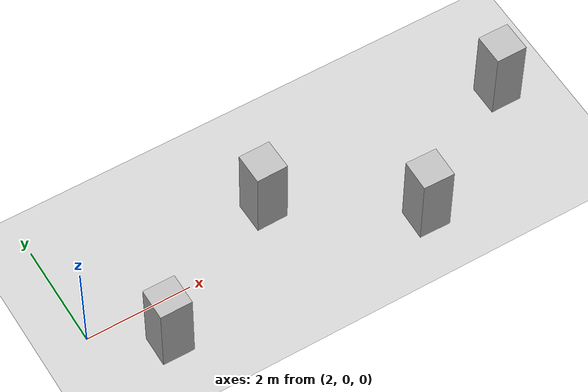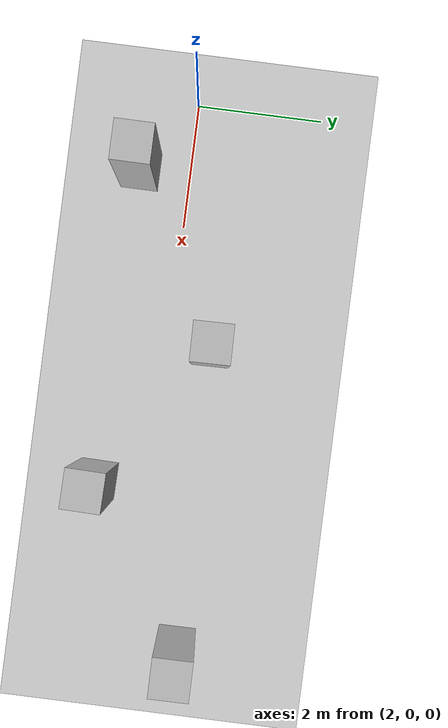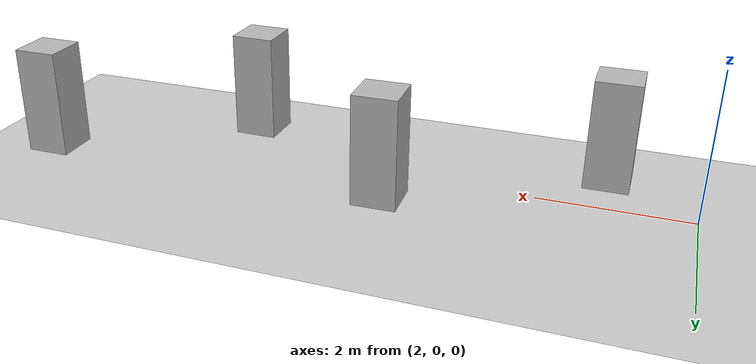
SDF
<?xml version="1.0"?>
<sdf version="1.6">
  <world name="v2-04g-r6-i5-compile-support-static-s5165">
    <gravity>0 0 -9.81</gravity>
    <physics name="v2_deterministic" type="ode">
      <max_step_size>0.002</max_step_size>
      <real_time_update_rate>500</real_time_update_rate>
    </physics>
    <include>
      <uri>model://sun</uri>
    </include>
    <include>
      <uri>model://ground_plane</uri>
    </include>
    <model name="pillar-1">
      <static>true</static>
      <pose>3.162530311 -0.797265562 0.750000000 0 0 -0.004639679</pose>
      <link name="link">
        <collision name="collision">
          <geometry>
            <box>
              <size>0.600000 0.600000 1.500000</size>
            </box>
          </geometry>
        </collision>
        <visual name="visual">
          <geometry>
            <box>
              <size>0.600000 0.600000 1.500000</size>
            </box>
          </geometry>
        </visual>
      </link>
    </model>
    <model name="pillar-2">
      <static>true</static>
      <pose>5.884826207 0.703031645 0.750000000 0 0 0.017401832</pose>
      <link name="link">
        <collision name="collision">
          <geometry>
            <box>
              <size>0.600000 0.600000 1.500000</size>
            </box>
          </geometry>
        </collision>
        <visual name="visual">
          <geometry>
            <box>
              <size>0.600000 0.600000 1.500000</size>
            </box>
          </geometry>
        </visual>
      </link>
    </model>
    <model name="pillar-3">
      <static>true</static>
      <pose>8.225193285 -0.871530876 0.750000000 0 0 -0.021605644</pose>
      <link name="link">
        <collision name="collision">
          <geometry>
            <box>
              <size>0.600000 0.600000 1.500000</size>
            </box>
          </geometry>
        </collision>
        <visual name="visual">
          <geometry>
            <box>
              <size>0.600000 0.600000 1.500000</size>
            </box>
          </geometry>
        </visual>
      </link>
    </model>
    <model name="pillar-4">
      <static>true</static>
      <pose>10.755996360 0.717327204 0.750000000 0 0 0.004446119</pose>
      <link name="link">
        <collision name="collision">
          <geometry>
            <box>
              <size>0.600000 0.600000 1.500000</size>
            </box>
          </geometry>
        </collision>
        <visual name="visual">
          <geometry>
            <box>
              <size>0.600000 0.600000 1.500000</size>
            </box>
          </geometry>
        </visual>
      </link>
    </model>
  </world>
</sdf>
